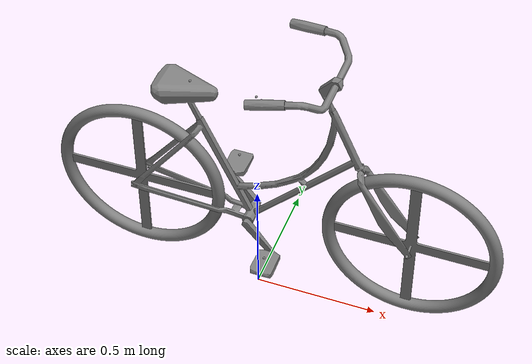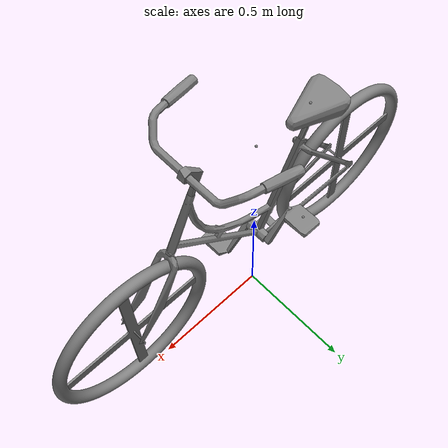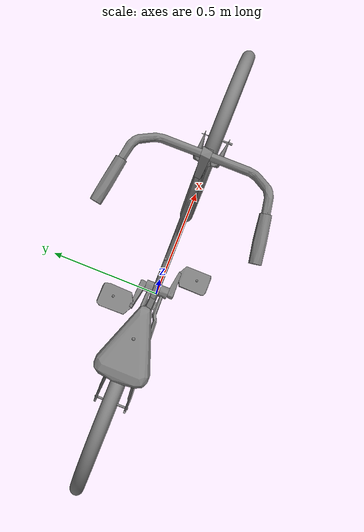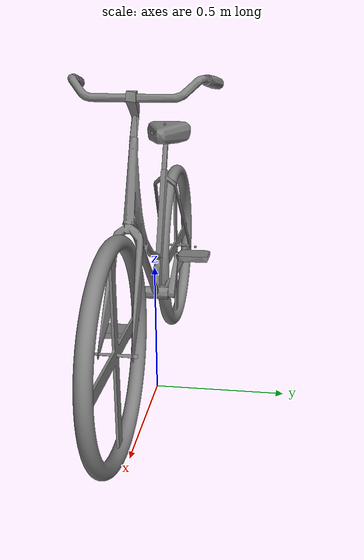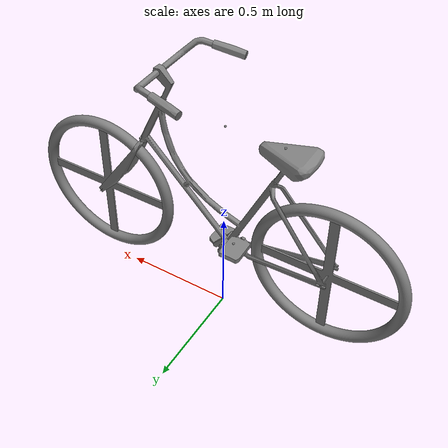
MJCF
<mujoco>
    <compiler assetdir="assets"/>
    <statistic extent="5" />
    <visual>
        <quality shadowsize="8192"/>
        <global elevation="-30"/>
    </visual>

    <asset>
        <mesh file="frame.stl"/>
        <mesh file="steering.stl"/>
        <mesh file="seat.stl"/>
        <mesh file="crank.stl"/>
        <mesh file="pedal_left.stl"/>
        <mesh file="pedal_right.stl"/>
        <mesh file="front_wheel.stl"/>
        <mesh file="rear_wheel.stl"/>
        <mesh file="front_wheel_hub.stl"/>
        <mesh file="rear_wheel_hub.stl"/>
        <mesh file="left_handlebar.stl"/>
        <mesh file="right_handlebar.stl"/>
        <mesh file="left_handle.stl"/>
        <mesh file="right_handle.stl"/>
    </asset>

    <default>
    </default>

    <worldbody>
        <light name="sun" directional="true" pos="0 0 2" dir="0 0 -1"/>

        <!-- BICYCLE -->
        <camera name="float_far"  pos="-4 0 2" xyaxes="0 -1 0 .5 0 1" mode="trackcom" fovy="60"/>
        <body name="bicycle" pos="0 0 .5">
            <freejoint/>
            <site name="tip" pos="0 0 0.5"/>
            <site name="seat_site" pos="-0.26 0 0.5"/>
            <geom type="mesh" mesh="frame" mass="10"/>
            <geom type="mesh" mesh="seat" mass="1"/>

            <!-- STEERING -->
            <body name="steering">
                <joint type="hinge" name="steering_joint" axis="-0.11 0 0.24" pos="0.292836 0 0.512624" limited="true" range="-80 80"/>
                <geom type="mesh" mesh="steering" mass="2"/>
                <geom type="mesh" mesh="left_handlebar" mass="0.3"/>
                <geom type="mesh" mesh="right_handlebar" mass="0.3"/>
                <geom type="mesh" mesh="right_handle" mass="0.1"/>
                <geom type="mesh" mesh="left_handle" mass="0.1"/>

                <site name="right_steering_site" pos="0.11014 -0.22773 0.68226"/>
                <site name="left_steering_site" pos="0.11014 0.22773 0.68226"/>
                <!-- FRONT WHEEL -->
                <body name="front_wheel">
                    <joint type="hinge" name="front_wheel_joint" axis="0 1 0" pos="0.6217 0 -0.06129"/>
                    <geom type="mesh" mesh="front_wheel" condim="4" friction=".7" solimp=".9 .99 .003" solref=".015 1" mass="1.5"/>
                    <geom type="mesh" mesh="front_wheel_hub"/>
                </body>
            </body>

            <!-- REAR WHEEL -->
            <body name="rear_wheel">
                <joint type="hinge" name="rear_wheel_joint" axis="0 1 0" pos="-0.4937 0 -0.06129"/>
                <geom type="mesh" mesh="rear_wheel" condim="4" friction=".7" solimp=".9 .99 .003" solref=".015 1" mass="1.5"/>
                <geom type="mesh" mesh="rear_wheel_hub"/>
            </body>

            <!-- CRANK -->
            <body name="crank">
                <joint type="hinge" name="crank_joint" pos="-0.025658 0 -0.110423" axis="0 1 0"/>
                <geom type="mesh" mesh="crank" mass=".3"/>
                <body name="pedal_left">
                    <site name="left_pedal_site" pos="-0.12727 0.13729 0.048681"/>
                    <joint type="hinge" name="pedal_left_joint" pos="-0.129889 0.0573 0.009774" axis="0 1 0"/>
                    <geom type="mesh" mesh="pedal_left" mass="0.1"/>
                </body>
                <body name="pedal_right">
                    <site name="right_pedal_site" pos="0.077678 -0.13784 -0.19456"/>
                    <joint type="hinge" name="pedal_right_joint" pos="0.078673 -0.0573 -0.234007" axis="0 1 0"/>
                    <geom type="mesh" mesh="pedal_right" mass="0.1"/>
                </body>
            </body>

        </body>

    </worldbody>

    <equality>
        <!-- CHAIN DRIVE 2.75:1 -->
        <joint name="chain_drive" joint1="rear_wheel_joint" joint2="crank_joint" polycoef="0 2 0 0 0"/>
    </equality>

    <contact>
      <exclude body1="crank" body2="rear_wheel"/>
      <exclude body1="pedal_left" body2="rear_wheel"/>
      <exclude body1="pedal_right" body2="rear_wheel"/>

      <exclude body1="crank" body2="front_wheel"/>
      <exclude body1="pedal_left" body2="front_wheel"/>
      <exclude body1="pedal_right" body2="front_wheel"/>
      <exclude body1="bicycle" body2="front_wheel"/>

      <exclude body1="pedal_left" body2="bicycle"/>
      <exclude body1="pedal_right" body2="bicycle"/>
    </contact>

</mujoco>
